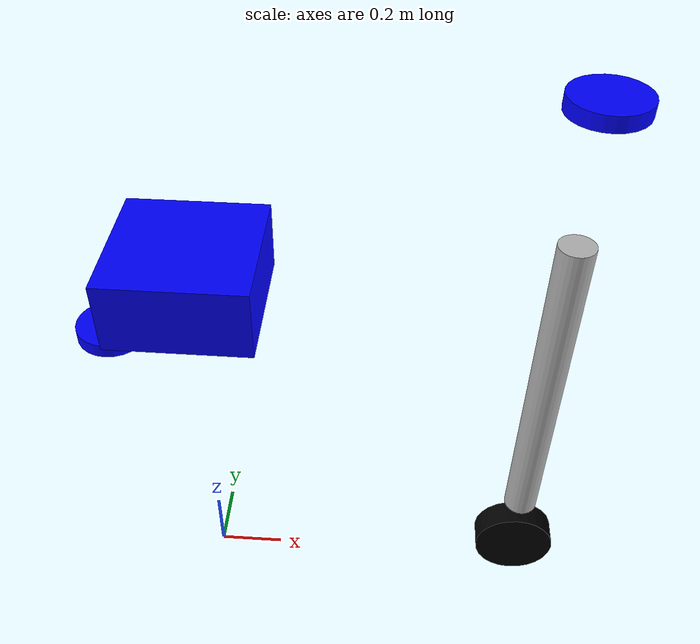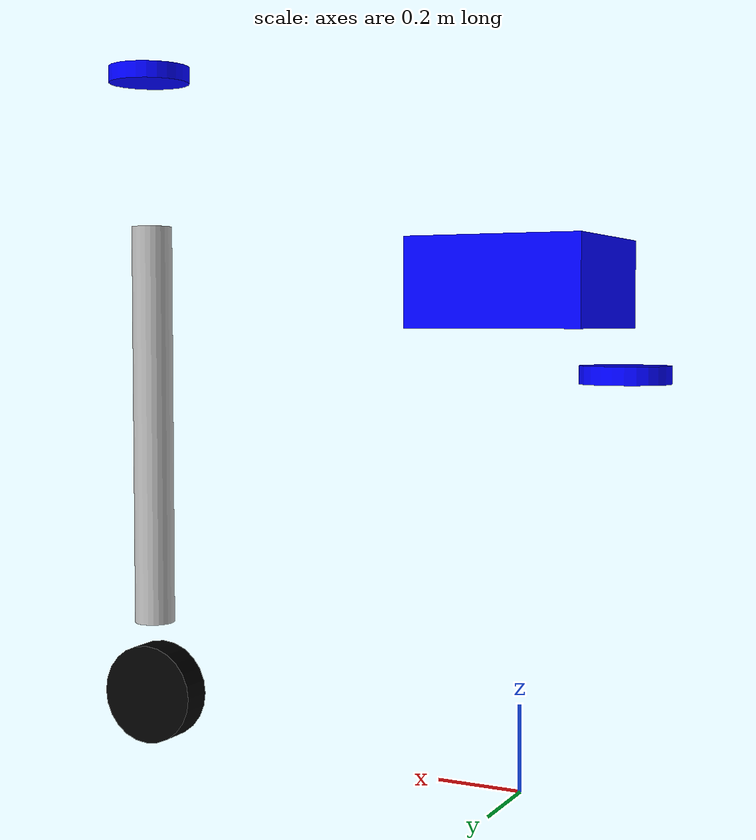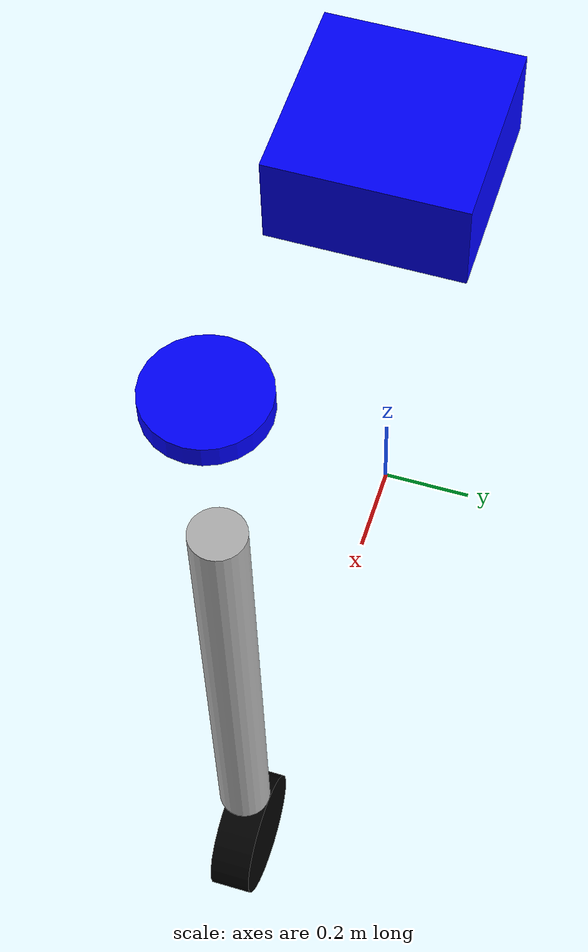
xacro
<?xml version="1.0"?>
<robot name="wheel_robot" xmlns:xacro="http://www.ros.org/wiki/xacro">

    <!-- Include robot parts -->
    <xacro:include filename="robot_parts_all.xacro"/>

    <!-- Include ros2_control configuration -->
    <xacro:include filename="robot_ros2_control_all.xacro"/>

</robot>

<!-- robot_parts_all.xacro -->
<robot name="steerable_wheel_robot" xmlns:xacro="http://www.ros.org/wiki/xacro">

  <!-- Base link (cube) -->
  <link name="base_link">
    <visual>
      <origin xyz="0 0 1.15" rpy="0 0 0"/>
      <geometry>
        <box size="0.4 0.4 0.2"/>
      </geometry>
      <material name="blue">
        <color rgba="0 0 1 1"/>
      </material>
    </visual>
    <collision>
      <origin xyz="0 0 1.15" rpy="0 0 0"/>
      <geometry>
        <box size="0.4 0.4 0.2"/>
      </geometry>
    </collision>
  </link>

  <!-- LiDAR link -->
  <link name="lidar_nav_link">
    <visual>
      <origin xyz="0.037 0 0.9" rpy="0 0 0"/>
      <geometry>
        <cylinder radius="0.1" length="0.04"/>
      </geometry>
      <material name="blue">
        <color rgba="0 0 1 1"/>
      </material>
    </visual>
    <collision>
      <origin xyz="0.037 0 0.9" rpy="0 0 0"/>
      <geometry>
        <cylinder radius="0.1" length="0.04"/>
      </geometry>
    </collision>
  </link>

  <!-- Forks link -->
  <link name="forks_link">
    <visual>
      <origin xyz="0.037 0 0.9" rpy="0 0 0"/>
      <geometry>
        <cylinder radius="0.1" length="0.04"/>
      </geometry>
      <material name="blue">
        <color rgba="0 0 1 1"/>
      </material>
    </visual>
    <collision>
      <origin xyz="0.037 0 0.9" rpy="0 0 0"/>
      <geometry>
        <cylinder radius="0.1" length="0.04"/>
      </geometry>
    </collision>
  </link>

  <!-- Shaft (vertical cylinder) -->
  <link name="shaft">
    <visual>
      <origin xyz="0 0 0.65" rpy="0 0 0"/>
      <geometry>
        <cylinder radius="0.05" length="1.0"/>
      </geometry>
      <material name="silver">
        <color rgba="0.7 0.7 0.7 1"/>
      </material>
    </visual>
    <collision>
      <origin xyz="0 0 0.65" rpy="0 0 0"/>
      <geometry>
        <cylinder radius="0.05" length="1.0"/>
      </geometry>
    </collision>
    <inertial>
      <mass value="1.0"/>
      <origin xyz="0 0 0.65" rpy="0 0 0"/>
      <inertia ixx="0.05" iyy="0.05" izz="0.001" ixy="0" ixz="0" iyz="0"/>
    </inertial>
  </link>

  <!-- Wheel (horizontal cylinder) -->
  <link name="wheel">
    <visual>
      <origin xyz="0 0 0" rpy="1.5708 0 0"/>
      <geometry>
        <cylinder radius="0.124" length="0.08"/>
      </geometry>
      <material name="black">
        <color rgba="0 0 0 1"/>
      </material>
    </visual>
    <collision>
      <origin xyz="0 0 0" rpy="1.5708 0 0"/>
      <geometry>
        <cylinder radius="0.124" length="0.08"/>
      </geometry>
    </collision>
    <inertial>
      <mass value="0.5"/>
      <inertia ixx="0.001" iyy="0.001" izz="0.0008" ixy="0" ixz="0" iyz="0"/>
    </inertial>
  </link>

  <!-- Fixed joint: base_link ↔ lidar -->
  <joint name="lidar_joint" type="fixed">
    <parent link="base_link"/>
    <child link="lidar_nav_link"/>
    <origin xyz="1.027 0 0.779" rpy="0 0 3.1416"/> <!--z = 0.874 navigation -->
  </joint>

  <!-- Revolute joint: base_link ↔ shaft (steering) -->
  <joint name="steer_joint" type="revolute">
    <parent link="base_link"/>
    <child link="shaft"/>
    <origin xyz="0.99 -0.0055 0.154" rpy="0 0 0"/>
    <axis xyz="0 0 1"/>
    <limit lower="-1.5708" upper="1.5708" velocity="1.4" effort="200"/>
  </joint>

  <!-- Continuous joint: shaft ↔ wheel (traction) -->
  <joint name="trac_joint" type="continuous">
    <parent link="shaft"/>
    <child link="wheel"/>
    <origin xyz="0 0 -0.03" rpy="0 0 0"/>
    <axis xyz="0 1 0"/>
  </joint>

  <!-- forks joint -->
  <joint name="forks_joint" type="prismatic">
    <parent link="base_link"/>
    <child link="forks_link"/>
    <origin xyz="-0.2 0 0.05" rpy="0 0 3.1416"/>
    <axis xyz="0 0 1"/>
    <limit lower="0" upper="1.20" velocity="10" effort="1000"/>
  </joint>

</robot>
